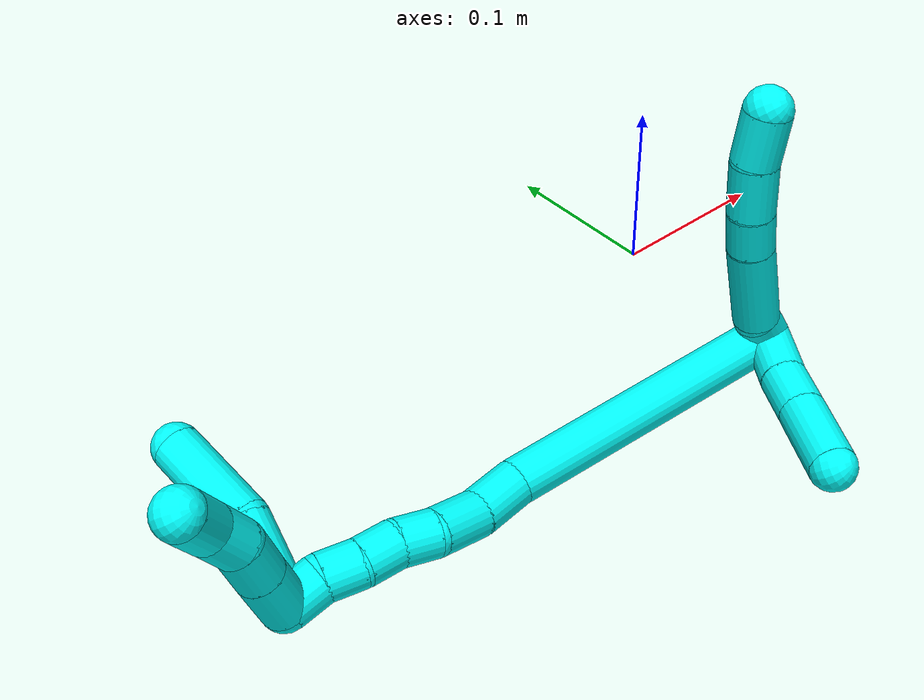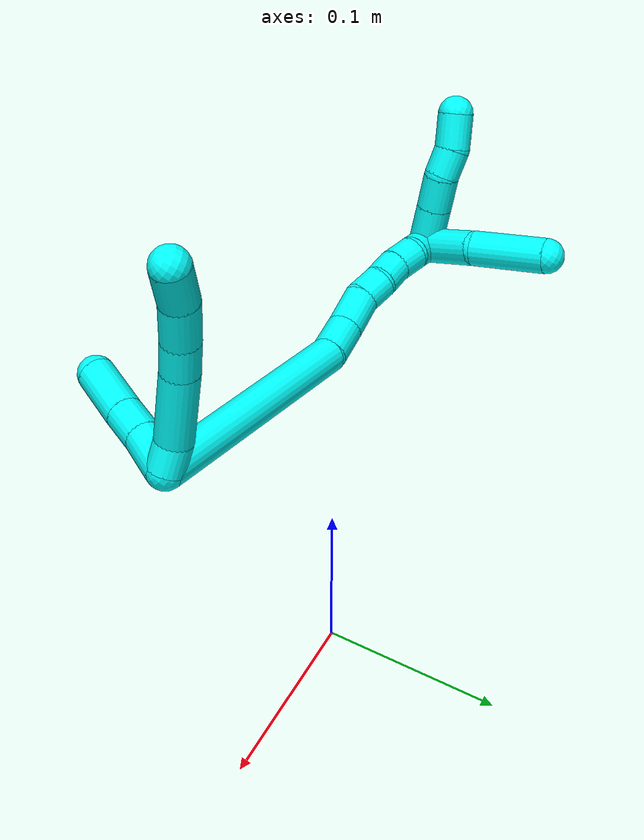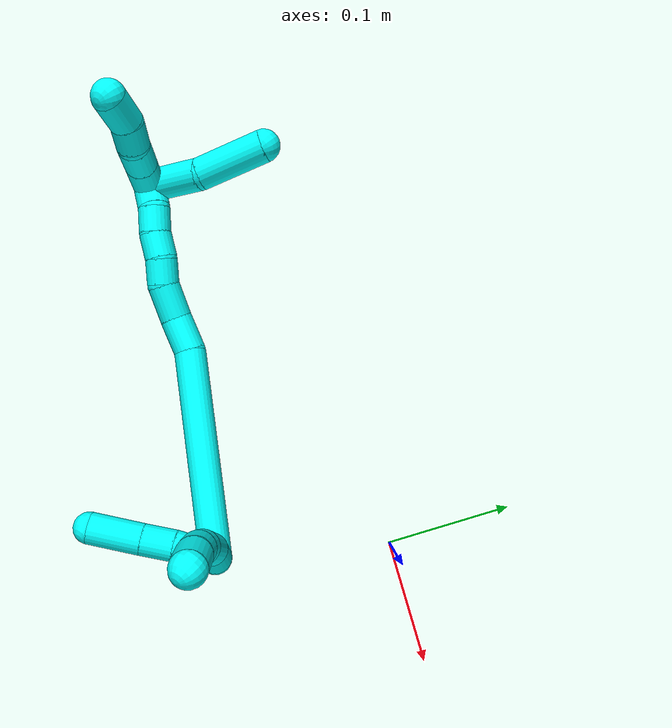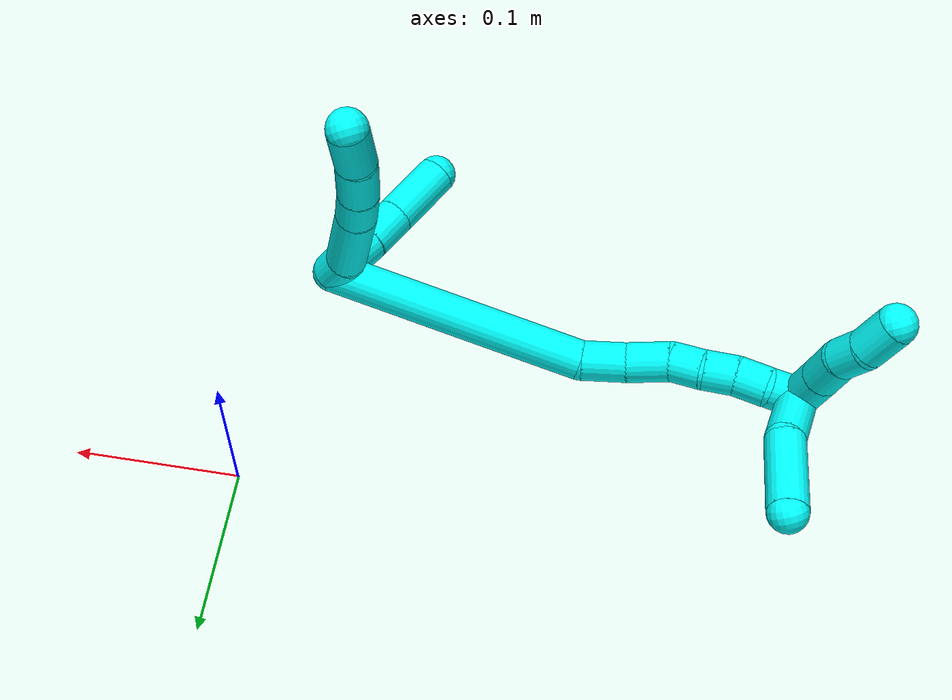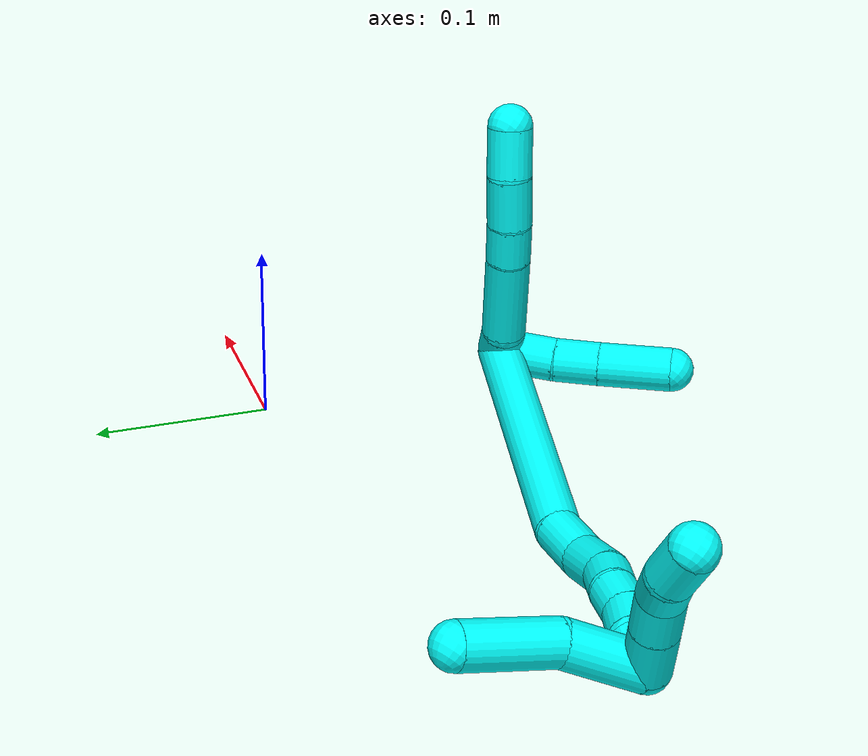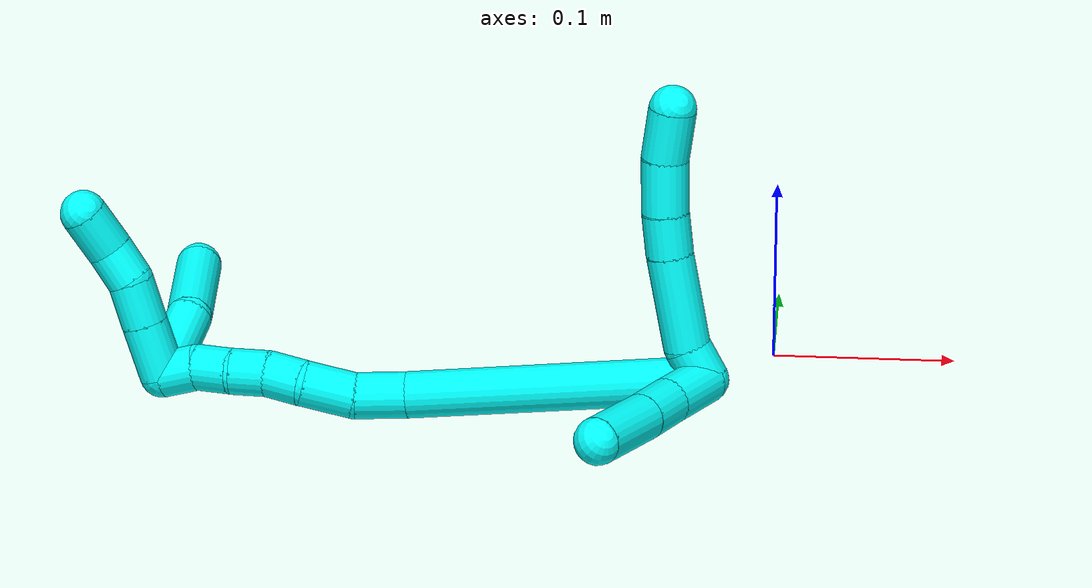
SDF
<sdf version="1.7">
 <world name="default">
  <model name="3">
   <static>0</static>
   <link name="3">
    <collision name="collision-cylinder-e_1_2_8">
     <pose>-0.008942 0.003802 -0.002961 -2.23254 -1.07652 1.76985</pose>
     <geometry><cylinder><radius>0.0125</radius><length>0.020315</length></cylinder></geometry>
     <surface>
      <friction><ode><mu>1.16</mu><mu2>1.16</mu2><slip1>0</slip1><slip2>0</slip2></ode></friction>
      <contact><ode><kp>1e+06</kp><kd>1</kd><max_vel>0</max_vel><min_depth>0.001</min_depth></ode></contact>
     </surface>
    </collision>
    <visual name="visual-cylinder-e_1_2_8">
     <pose>-0.008942 0.003802 -0.002961 -2.23254 -1.07652 1.76985</pose>
     <geometry><cylinder><radius>0.0125</radius><length>0.020315</length></cylinder></geometry>
     <material><ambient>0.003922 1 0.996078 1</ambient></material>
    </visual>
    <collision name="collision-cylinder-e_2_8_9">
     <pose>-0.039709 0.010881 -0.018463 -2.88597 -1.03489 2.69746</pose>
     <geometry><cylinder><radius>0.0125</radius><length>0.050768</length></cylinder></geometry>
     <surface>
      <friction><ode><mu>1.16</mu><mu2>1.16</mu2><slip1>0</slip1><slip2>0</slip2></ode></friction>
      <contact><ode><kp>1e+06</kp><kd>1</kd><max_vel>0</max_vel><min_depth>0.001</min_depth></ode></contact>
     </surface>
    </collision>
    <visual name="visual-cylinder-e_2_8_9">
     <pose>-0.039709 0.010881 -0.018463 -2.88597 -1.03489 2.69746</pose>
     <geometry><cylinder><radius>0.0125</radius><length>0.050768</length></cylinder></geometry>
     <material><ambient>0.003922 1 0.996078 1</ambient></material>
    </visual>
    <collision name="collision-cylinder-e_3_9_10">
     <pose>-0.071008 0.014942 -0.037107 -3.01382 -0.994728 2.90699</pose>
     <geometry><cylinder><radius>0.0125</radius><length>0.022592</length></cylinder></geometry>
     <surface>
      <friction><ode><mu>1.16</mu><mu2>1.16</mu2><slip1>0</slip1><slip2>0</slip2></ode></friction>
      <contact><ode><kp>1e+06</kp><kd>1</kd><max_vel>0</max_vel><min_depth>0.001</min_depth></ode></contact>
     </surface>
    </collision>
    <visual name="visual-cylinder-e_3_9_10">
     <pose>-0.071008 0.014942 -0.037107 -3.01382 -0.994728 2.90699</pose>
     <geometry><cylinder><radius>0.0125</radius><length>0.022592</length></cylinder></geometry>
     <material><ambient>0.003922 1 0.996078 1</ambient></material>
    </visual>
    <collision name="collision-cylinder-e_4_10_11">
     <pose>-0.092306 0.015527 -0.051565 3.11772 -0.955555 -3.09549</pose>
     <geometry><cylinder><radius>0.0125</radius><length>0.028961</length></cylinder></geometry>
     <surface>
      <friction><ode><mu>1.16</mu><mu2>1.16</mu2><slip1>0</slip1><slip2>0</slip2></ode></friction>
      <contact><ode><kp>1e+06</kp><kd>1</kd><max_vel>0</max_vel><min_depth>0.001</min_depth></ode></contact>
     </surface>
    </collision>
    <visual name="visual-cylinder-e_4_10_11">
     <pose>-0.092306 0.015527 -0.051565 3.11772 -0.955555 -3.09549</pose>
     <geometry><cylinder><radius>0.0125</radius><length>0.028961</length></cylinder></geometry>
     <material><ambient>0.003922 1 0.996078 1</ambient></material>
    </visual>
    <collision name="collision-cylinder-e_5_11_6">
     <pose>-0.113975 0.013835 -0.069304 2.98395 -0.803087 -2.77377</pose>
     <geometry><cylinder><radius>0.0125</radius><length>0.027363</length></cylinder></geometry>
     <surface>
      <friction><ode><mu>1.16</mu><mu2>1.16</mu2><slip1>0</slip1><slip2>0</slip2></ode></friction>
      <contact><ode><kp>1e+06</kp><kd>1</kd><max_vel>0</max_vel><min_depth>0.001</min_depth></ode></contact>
     </surface>
    </collision>
    <visual name="visual-cylinder-e_5_11_6">
     <pose>-0.113975 0.013835 -0.069304 2.98395 -0.803087 -2.77377</pose>
     <geometry><cylinder><radius>0.0125</radius><length>0.027363</length></cylinder></geometry>
     <material><ambient>0.003922 1 0.996078 1</ambient></material>
    </visual>
    <collision name="collision-cylinder-e_1_2_12">
     <pose>0.005097 0.014801 -0.005324 -1.91611 0.313379 -0.44211</pose>
     <geometry><cylinder><radius>0.0125</radius><length>0.033069</length></cylinder></geometry>
     <surface>
      <friction><ode><mu>1.16</mu><mu2>1.16</mu2><slip1>0</slip1><slip2>0</slip2></ode></friction>
      <contact><ode><kp>1e+06</kp><kd>1</kd><max_vel>0</max_vel><min_depth>0.001</min_depth></ode></contact>
     </surface>
    </collision>
    <visual name="visual-cylinder-e_1_2_12">
     <pose>0.005097 0.014801 -0.005324 -1.91611 0.313379 -0.44211</pose>
     <geometry><cylinder><radius>0.0125</radius><length>0.033069</length></cylinder></geometry>
     <material><ambient>0.003922 1 0.996078 1</ambient></material>
    </visual>
    <collision name="collision-cylinder-e_2_12_13">
     <pose>0.014263 0.040469 -0.015863 -2.01812 0.325492 -0.510411</pose>
     <geometry><cylinder><radius>0.0125</radius><length>0.025443</length></cylinder></geometry>
     <surface>
      <friction><ode><mu>1.16</mu><mu2>1.16</mu2><slip1>0</slip1><slip2>0</slip2></ode></friction>
      <contact><ode><kp>1e+06</kp><kd>1</kd><max_vel>0</max_vel><min_depth>0.001</min_depth></ode></contact>
     </surface>
    </collision>
    <visual name="visual-cylinder-e_2_12_13">
     <pose>0.014263 0.040469 -0.015863 -2.01812 0.325492 -0.510411</pose>
     <geometry><cylinder><radius>0.0125</radius><length>0.025443</length></cylinder></geometry>
     <material><ambient>0.003922 1 0.996078 1</ambient></material>
    </visual>
    <collision name="collision-cylinder-e_3_13_5">
     <pose>0.024136 0.06929 -0.029697 -2.01846 0.283633 -0.44632</pose>
     <geometry><cylinder><radius>0.0125</radius><length>0.041487</length></cylinder></geometry>
     <surface>
      <friction><ode><mu>1.16</mu><mu2>1.16</mu2><slip1>0</slip1><slip2>0</slip2></ode></friction>
      <contact><ode><kp>1e+06</kp><kd>1</kd><max_vel>0</max_vel><min_depth>0.001</min_depth></ode></contact>
     </surface>
    </collision>
    <visual name="visual-cylinder-e_3_13_5">
     <pose>0.024136 0.06929 -0.029697 -2.01846 0.283633 -0.44632</pose>
     <geometry><cylinder><radius>0.0125</radius><length>0.041487</length></cylinder></geometry>
     <material><ambient>0.003922 1 0.996078 1</ambient></material>
    </visual>
    <collision name="collision-cylinder-e_1_2_14">
     <pose>-0.022646 0.062637 0.047183 -0.925198 -0.28113 0.140894</pose>
     <geometry><cylinder><radius>0.0125</radius><length>0.163248</length></cylinder></geometry>
     <surface>
      <friction><ode><mu>1.16</mu><mu2>1.16</mu2><slip1>0</slip1><slip2>0</slip2></ode></friction>
      <contact><ode><kp>1e+06</kp><kd>1</kd><max_vel>0</max_vel><min_depth>0.001</min_depth></ode></contact>
     </surface>
    </collision>
    <visual name="visual-cylinder-e_1_2_14">
     <pose>-0.022646 0.062637 0.047183 -0.925198 -0.28113 0.140894</pose>
     <geometry><cylinder><radius>0.0125</radius><length>0.163248</length></cylinder></geometry>
     <material><ambient>0.003922 1 0.996078 1</ambient></material>
    </visual>
    <collision name="collision-cylinder-e_2_14_15">
     <pose>-0.04891 0.138256 0.098988 -1.22884 -0.256755 0.181646</pose>
     <geometry><cylinder><radius>0.0125</radius><length>0.028495</length></cylinder></geometry>
     <surface>
      <friction><ode><mu>1.16</mu><mu2>1.16</mu2><slip1>0</slip1><slip2>0</slip2></ode></friction>
      <contact><ode><kp>1e+06</kp><kd>1</kd><max_vel>0</max_vel><min_depth>0.001</min_depth></ode></contact>
     </surface>
    </collision>
    <visual name="visual-cylinder-e_2_14_15">
     <pose>-0.04891 0.138256 0.098988 -1.22884 -0.256755 0.181646</pose>
     <geometry><cylinder><radius>0.0125</radius><length>0.028495</length></cylinder></geometry>
     <material><ambient>0.003922 1 0.996078 1</ambient></material>
    </visual>
    <collision name="collision-cylinder-e_3_15_16">
     <pose>-0.059269 0.163233 0.106588 -1.3273 -0.499358 0.393642</pose>
     <geometry><cylinder><radius>0.0125</radius><length>0.028155</length></cylinder></geometry>
     <surface>
      <friction><ode><mu>1.16</mu><mu2>1.16</mu2><slip1>0</slip1><slip2>0</slip2></ode></friction>
      <contact><ode><kp>1e+06</kp><kd>1</kd><max_vel>0</max_vel><min_depth>0.001</min_depth></ode></contact>
     </surface>
    </collision>
    <visual name="visual-cylinder-e_3_15_16">
     <pose>-0.059269 0.163233 0.106588 -1.3273 -0.499358 0.393642</pose>
     <geometry><cylinder><radius>0.0125</radius><length>0.028155</length></cylinder></geometry>
     <material><ambient>0.003922 1 0.996078 1</ambient></material>
    </visual>
    <collision name="collision-cylinder-e_4_16_17">
     <pose>-0.071501 0.182304 0.114079 -1.00331 -0.579355 0.32408</pose>
     <geometry><cylinder><radius>0.0125</radius><length>0.020058</length></cylinder></geometry>
     <surface>
      <friction><ode><mu>1.16</mu><mu2>1.16</mu2><slip1>0</slip1><slip2>0</slip2></ode></friction>
      <contact><ode><kp>1e+06</kp><kd>1</kd><max_vel>0</max_vel><min_depth>0.001</min_depth></ode></contact>
     </surface>
    </collision>
    <visual name="visual-cylinder-e_4_16_17">
     <pose>-0.071501 0.182304 0.114079 -1.00331 -0.579355 0.32408</pose>
     <geometry><cylinder><radius>0.0125</radius><length>0.020058</length></cylinder></geometry>
     <material><ambient>0.003922 1 0.996078 1</ambient></material>
    </visual>
    <collision name="collision-cylinder-e_5_17_18">
     <pose>-0.080594 0.197675 0.122861 -1.09524 -0.368455 0.226303</pose>
     <geometry><cylinder><radius>0.0125</radius><length>0.020001</length></cylinder></geometry>
     <surface>
      <friction><ode><mu>1.16</mu><mu2>1.16</mu2><slip1>0</slip1><slip2>0</slip2></ode></friction>
      <contact><ode><kp>1e+06</kp><kd>1</kd><max_vel>0</max_vel><min_depth>0.001</min_depth></ode></contact>
     </surface>
    </collision>
    <visual name="visual-cylinder-e_5_17_18">
     <pose>-0.080594 0.197675 0.122861 -1.09524 -0.368455 0.226303</pose>
     <geometry><cylinder><radius>0.0125</radius><length>0.020001</length></cylinder></geometry>
     <material><ambient>0.003922 1 0.996078 1</ambient></material>
    </visual>
    <collision name="collision-cylinder-e_6_18_19">
     <pose>-0.088536 0.213077 0.132697 -0.906564 -0.448147 0.22112</pose>
     <geometry><cylinder><radius>0.0125</radius><length>0.020032</length></cylinder></geometry>
     <surface>
      <friction><ode><mu>1.16</mu><mu2>1.16</mu2><slip1>0</slip1><slip2>0</slip2></ode></friction>
      <contact><ode><kp>1e+06</kp><kd>1</kd><max_vel>0</max_vel><min_depth>0.001</min_depth></ode></contact>
     </surface>
    </collision>
    <visual name="visual-cylinder-e_6_18_19">
     <pose>-0.088536 0.213077 0.132697 -0.906564 -0.448147 0.22112</pose>
     <geometry><cylinder><radius>0.0125</radius><length>0.020032</length></cylinder></geometry>
     <material><ambient>0.003922 1 0.996078 1</ambient></material>
    </visual>
    <collision name="collision-cylinder-e_7_19_1">
     <pose>-0.094181 0.228245 0.144044 -0.948534 -0.130906 0.067271</pose>
     <geometry><cylinder><radius>0.0125</radius><length>0.020011</length></cylinder></geometry>
     <surface>
      <friction><ode><mu>1.16</mu><mu2>1.16</mu2><slip1>0</slip1><slip2>0</slip2></ode></friction>
      <contact><ode><kp>1e+06</kp><kd>1</kd><max_vel>0</max_vel><min_depth>0.001</min_depth></ode></contact>
     </surface>
    </collision>
    <visual name="visual-cylinder-e_7_19_1">
     <pose>-0.094181 0.228245 0.144044 -0.948534 -0.130906 0.067271</pose>
     <geometry><cylinder><radius>0.0125</radius><length>0.020011</length></cylinder></geometry>
     <material><ambient>0.003922 1 0.996078 1</ambient></material>
    </visual>
    <collision name="collision-cylinder-e_1_1_20">
     <pose>-0.108746 0.239702 0.143252 -2.66472 -1.06174 2.35654</pose>
     <geometry><cylinder><radius>0.0125</radius><length>0.030367</length></cylinder></geometry>
     <surface>
      <friction><ode><mu>1.16</mu><mu2>1.16</mu2><slip1>0</slip1><slip2>0</slip2></ode></friction>
      <contact><ode><kp>1e+06</kp><kd>1</kd><max_vel>0</max_vel><min_depth>0.001</min_depth></ode></contact>
     </surface>
    </collision>
    <visual name="visual-cylinder-e_1_1_20">
     <pose>-0.108746 0.239702 0.143252 -2.66472 -1.06174 2.35654</pose>
     <geometry><cylinder><radius>0.0125</radius><length>0.030367</length></cylinder></geometry>
     <material><ambient>0.003922 1 0.996078 1</ambient></material>
    </visual>
    <collision name="collision-cylinder-e_2_20_21">
     <pose>-0.13258 0.245674 0.131297 -2.69511 -1.05727 2.40016</pose>
     <geometry><cylinder><radius>0.0125</radius><length>0.024286</length></cylinder></geometry>
     <surface>
      <friction><ode><mu>1.16</mu><mu2>1.16</mu2><slip1>0</slip1><slip2>0</slip2></ode></friction>
      <contact><ode><kp>1e+06</kp><kd>1</kd><max_vel>0</max_vel><min_depth>0.001</min_depth></ode></contact>
     </surface>
    </collision>
    <visual name="visual-cylinder-e_2_20_21">
     <pose>-0.13258 0.245674 0.131297 -2.69511 -1.05727 2.40016</pose>
     <geometry><cylinder><radius>0.0125</radius><length>0.024286</length></cylinder></geometry>
     <material><ambient>0.003922 1 0.996078 1</ambient></material>
    </visual>
    <collision name="collision-cylinder-e_3_21_22">
     <pose>-0.152159 0.25246 0.123654 -2.06401 -1.08271 1.57661</pose>
     <geometry><cylinder><radius>0.0125</radius><length>0.020385</length></cylinder></geometry>
     <surface>
      <friction><ode><mu>1.16</mu><mu2>1.16</mu2><slip1>0</slip1><slip2>0</slip2></ode></friction>
      <contact><ode><kp>1e+06</kp><kd>1</kd><max_vel>0</max_vel><min_depth>0.001</min_depth></ode></contact>
     </surface>
    </collision>
    <visual name="visual-cylinder-e_3_21_22">
     <pose>-0.152159 0.25246 0.123654 -2.06401 -1.08271 1.57661</pose>
     <geometry><cylinder><radius>0.0125</radius><length>0.020385</length></cylinder></geometry>
     <material><ambient>0.003922 1 0.996078 1</ambient></material>
    </visual>
    <collision name="collision-cylinder-e_4_22_4">
     <pose>-0.170385 0.262964 0.115814 -2.29588 -0.831538 1.55174</pose>
     <geometry><cylinder><radius>0.0125</radius><length>0.024963</length></cylinder></geometry>
     <surface>
      <friction><ode><mu>1.16</mu><mu2>1.16</mu2><slip1>0</slip1><slip2>0</slip2></ode></friction>
      <contact><ode><kp>1e+06</kp><kd>1</kd><max_vel>0</max_vel><min_depth>0.001</min_depth></ode></contact>
     </surface>
    </collision>
    <visual name="visual-cylinder-e_4_22_4">
     <pose>-0.170385 0.262964 0.115814 -2.29588 -0.831538 1.55174</pose>
     <geometry><cylinder><radius>0.0125</radius><length>0.024963</length></cylinder></geometry>
     <material><ambient>0.003922 1 0.996078 1</ambient></material>
    </visual>
    <collision name="collision-cylinder-e_1_1_23">
     <pose>-0.112267 0.22223 0.156912 1.10439 -0.816744 -0.521077</pose>
     <geometry><cylinder><radius>0.0125</radius><length>0.046039</length></cylinder></geometry>
     <surface>
      <friction><ode><mu>1.16</mu><mu2>1.16</mu2><slip1>0</slip1><slip2>0</slip2></ode></friction>
      <contact><ode><kp>1e+06</kp><kd>1</kd><max_vel>0</max_vel><min_depth>0.001</min_depth></ode></contact>
     </surface>
    </collision>
    <visual name="visual-cylinder-e_1_1_23">
     <pose>-0.112267 0.22223 0.156912 1.10439 -0.816744 -0.521077</pose>
     <geometry><cylinder><radius>0.0125</radius><length>0.046039</length></cylinder></geometry>
     <material><ambient>0.003922 1 0.996078 1</ambient></material>
    </visual>
    <collision name="collision-cylinder-e_2_23_3">
     <pose>-0.147658 0.196069 0.179345 0.667029 -0.761253 -0.275506</pose>
     <geometry><cylinder><radius>0.0125</radius><length>0.053961</length></cylinder></geometry>
     <surface>
      <friction><ode><mu>1.16</mu><mu2>1.16</mu2><slip1>0</slip1><slip2>0</slip2></ode></friction>
      <contact><ode><kp>1e+06</kp><kd>1</kd><max_vel>0</max_vel><min_depth>0.001</min_depth></ode></contact>
     </surface>
    </collision>
    <visual name="visual-cylinder-e_2_23_3">
     <pose>-0.147658 0.196069 0.179345 0.667029 -0.761253 -0.275506</pose>
     <geometry><cylinder><radius>0.0125</radius><length>0.053961</length></cylinder></geometry>
     <material><ambient>0.003922 1 0.996078 1</ambient></material>
    </visual>
    <collision name="collision-sphere-3">
     <pose>-0.16627 0.183985 0.194692 0 -0 0</pose>
     <geometry><sphere><radius>0.0125</radius></sphere></geometry>
     <surface>
      <friction><ode><mu>1.16</mu><mu2>1.16</mu2><slip1>0</slip1><slip2>0</slip2></ode></friction>
      <contact><ode><kp>1e+06</kp><kd>1</kd><max_vel>0</max_vel><min_depth>0.001</min_depth></ode></contact>
     </surface>
    </collision>
    <visual name="visual-sphere-3">
     <pose>-0.16627 0.183985 0.194692 0 -0 0</pose>
     <geometry><sphere><radius>0.0125</radius></sphere></geometry>
     <material><ambient>0.003922 1 0.996078 1</ambient></material>
    </visual>
    <collision name="collision-sphere-23">
     <pose>-0.129046 0.208154 0.163999 0 -0 0</pose>
     <geometry><sphere><radius>0.0125</radius></sphere></geometry>
     <surface>
      <friction><ode><mu>1.16</mu><mu2>1.16</mu2><slip1>0</slip1><slip2>0</slip2></ode></friction>
      <contact><ode><kp>1e+06</kp><kd>1</kd><max_vel>0</max_vel><min_depth>0.001</min_depth></ode></contact>
     </surface>
    </collision>
    <visual name="visual-sphere-23">
     <pose>-0.129046 0.208154 0.163999 0 -0 0</pose>
     <geometry><sphere><radius>0.0125</radius></sphere></geometry>
     <material><ambient>0.003922 1 0.996078 1</ambient></material>
    </visual>
    <collision name="collision-sphere-4">
     <pose>-0.179608 0.269257 0.110237 0 -0 0</pose>
     <geometry><sphere><radius>0.0125</radius></sphere></geometry>
     <surface>
      <friction><ode><mu>1.16</mu><mu2>1.16</mu2><slip1>0</slip1><slip2>0</slip2></ode></friction>
      <contact><ode><kp>1e+06</kp><kd>1</kd><max_vel>0</max_vel><min_depth>0.001</min_depth></ode></contact>
     </surface>
    </collision>
    <visual name="visual-sphere-4">
     <pose>-0.179608 0.269257 0.110237 0 -0 0</pose>
     <geometry><sphere><radius>0.0125</radius></sphere></geometry>
     <material><ambient>0.003922 1 0.996078 1</ambient></material>
    </visual>
    <collision name="collision-sphere-22">
     <pose>-0.161161 0.25667 0.121391 0 -0 0</pose>
     <geometry><sphere><radius>0.0125</radius></sphere></geometry>
     <surface>
      <friction><ode><mu>1.16</mu><mu2>1.16</mu2><slip1>0</slip1><slip2>0</slip2></ode></friction>
      <contact><ode><kp>1e+06</kp><kd>1</kd><max_vel>0</max_vel><min_depth>0.001</min_depth></ode></contact>
     </surface>
    </collision>
    <visual name="visual-sphere-22">
     <pose>-0.161161 0.25667 0.121391 0 -0 0</pose>
     <geometry><sphere><radius>0.0125</radius></sphere></geometry>
     <material><ambient>0.003922 1 0.996078 1</ambient></material>
    </visual>
    <collision name="collision-sphere-21">
     <pose>-0.143157 0.24825 0.125917 0 -0 0</pose>
     <geometry><sphere><radius>0.0125</radius></sphere></geometry>
     <surface>
      <friction><ode><mu>1.16</mu><mu2>1.16</mu2><slip1>0</slip1><slip2>0</slip2></ode></friction>
      <contact><ode><kp>1e+06</kp><kd>1</kd><max_vel>0</max_vel><min_depth>0.001</min_depth></ode></contact>
     </surface>
    </collision>
    <visual name="visual-sphere-21">
     <pose>-0.143157 0.24825 0.125917 0 -0 0</pose>
     <geometry><sphere><radius>0.0125</radius></sphere></geometry>
     <material><ambient>0.003922 1 0.996078 1</ambient></material>
    </visual>
    <collision name="collision-sphere-20">
     <pose>-0.122004 0.243098 0.136678 0 -0 0</pose>
     <geometry><sphere><radius>0.0125</radius></sphere></geometry>
     <surface>
      <friction><ode><mu>1.16</mu><mu2>1.16</mu2><slip1>0</slip1><slip2>0</slip2></ode></friction>
      <contact><ode><kp>1e+06</kp><kd>1</kd><max_vel>0</max_vel><min_depth>0.001</min_depth></ode></contact>
     </surface>
    </collision>
    <visual name="visual-sphere-20">
     <pose>-0.122004 0.243098 0.136678 0 -0 0</pose>
     <geometry><sphere><radius>0.0125</radius></sphere></geometry>
     <material><ambient>0.003922 1 0.996078 1</ambient></material>
    </visual>
    <collision name="collision-sphere-6">
     <pose>-0.123819 0.012344 -0.078688 0 -0 0</pose>
     <geometry><sphere><radius>0.0125</radius></sphere></geometry>
     <surface>
      <friction><ode><mu>1.16</mu><mu2>1.16</mu2><slip1>0</slip1><slip2>0</slip2></ode></friction>
      <contact><ode><kp>1e+06</kp><kd>1</kd><max_vel>0</max_vel><min_depth>0.001</min_depth></ode></contact>
     </surface>
    </collision>
    <visual name="visual-sphere-6">
     <pose>-0.123819 0.012344 -0.078688 0 -0 0</pose>
     <geometry><sphere><radius>0.0125</radius></sphere></geometry>
     <material><ambient>0.003922 1 0.996078 1</ambient></material>
    </visual>
    <collision name="collision-sphere-11">
     <pose>-0.104131 0.015327 -0.05992 0 -0 0</pose>
     <geometry><sphere><radius>0.0125</radius></sphere></geometry>
     <surface>
      <friction><ode><mu>1.16</mu><mu2>1.16</mu2><slip1>0</slip1><slip2>0</slip2></ode></friction>
      <contact><ode><kp>1e+06</kp><kd>1</kd><max_vel>0</max_vel><min_depth>0.001</min_depth></ode></contact>
     </surface>
    </collision>
    <visual name="visual-sphere-11">
     <pose>-0.104131 0.015327 -0.05992 0 -0 0</pose>
     <geometry><sphere><radius>0.0125</radius></sphere></geometry>
     <material><ambient>0.003922 1 0.996078 1</ambient></material>
    </visual>
    <collision name="collision-sphere-10">
     <pose>-0.080481 0.015726 -0.04321 0 -0 0</pose>
     <geometry><sphere><radius>0.0125</radius></sphere></geometry>
     <surface>
      <friction><ode><mu>1.16</mu><mu2>1.16</mu2><slip1>0</slip1><slip2>0</slip2></ode></friction>
      <contact><ode><kp>1e+06</kp><kd>1</kd><max_vel>0</max_vel><min_depth>0.001</min_depth></ode></contact>
     </surface>
    </collision>
    <visual name="visual-sphere-10">
     <pose>-0.080481 0.015726 -0.04321 0 -0 0</pose>
     <geometry><sphere><radius>0.0125</radius></sphere></geometry>
     <material><ambient>0.003922 1 0.996078 1</ambient></material>
    </visual>
    <collision name="collision-sphere-9">
     <pose>-0.061535 0.014158 -0.031003 0 -0 0</pose>
     <geometry><sphere><radius>0.0125</radius></sphere></geometry>
     <surface>
      <friction><ode><mu>1.16</mu><mu2>1.16</mu2><slip1>0</slip1><slip2>0</slip2></ode></friction>
      <contact><ode><kp>1e+06</kp><kd>1</kd><max_vel>0</max_vel><min_depth>0.001</min_depth></ode></contact>
     </surface>
    </collision>
    <visual name="visual-sphere-9">
     <pose>-0.061535 0.014158 -0.031003 0 -0 0</pose>
     <geometry><sphere><radius>0.0125</radius></sphere></geometry>
     <material><ambient>0.003922 1 0.996078 1</ambient></material>
    </visual>
    <collision name="collision-sphere-2">
     <geometry><sphere><radius>0.0125</radius></sphere></geometry>
     <surface>
      <friction><ode><mu>1.16</mu><mu2>1.16</mu2><slip1>0</slip1><slip2>0</slip2></ode></friction>
      <contact><ode><kp>1e+06</kp><kd>1</kd><max_vel>0</max_vel><min_depth>0.001</min_depth></ode></contact>
     </surface>
    </collision>
    <visual name="visual-sphere-2">
     <geometry><sphere><radius>0.0125</radius></sphere></geometry>
     <material><ambient>0.003922 1 0.996078 1</ambient></material>
    </visual>
    <collision name="collision-sphere-19">
     <pose>-0.092875 0.220184 0.138262 0 -0 0</pose>
     <geometry><sphere><radius>0.0125</radius></sphere></geometry>
     <surface>
      <friction><ode><mu>1.16</mu><mu2>1.16</mu2><slip1>0</slip1><slip2>0</slip2></ode></friction>
      <contact><ode><kp>1e+06</kp><kd>1</kd><max_vel>0</max_vel><min_depth>0.001</min_depth></ode></contact>
     </surface>
    </collision>
    <visual name="visual-sphere-19">
     <pose>-0.092875 0.220184 0.138262 0 -0 0</pose>
     <geometry><sphere><radius>0.0125</radius></sphere></geometry>
     <material><ambient>0.003922 1 0.996078 1</ambient></material>
    </visual>
    <collision name="collision-sphere-8">
     <pose>-0.017884 0.007603 -0.005922 0 -0 0</pose>
     <geometry><sphere><radius>0.0125</radius></sphere></geometry>
     <surface>
      <friction><ode><mu>1.16</mu><mu2>1.16</mu2><slip1>0</slip1><slip2>0</slip2></ode></friction>
      <contact><ode><kp>1e+06</kp><kd>1</kd><max_vel>0</max_vel><min_depth>0.001</min_depth></ode></contact>
     </surface>
    </collision>
    <visual name="visual-sphere-8">
     <pose>-0.017884 0.007603 -0.005922 0 -0 0</pose>
     <geometry><sphere><radius>0.0125</radius></sphere></geometry>
     <material><ambient>0.003922 1 0.996078 1</ambient></material>
    </visual>
    <collision name="collision-sphere-12">
     <pose>0.010194 0.029602 -0.010649 0 -0 0</pose>
     <geometry><sphere><radius>0.0125</radius></sphere></geometry>
     <surface>
      <friction><ode><mu>1.16</mu><mu2>1.16</mu2><slip1>0</slip1><slip2>0</slip2></ode></friction>
      <contact><ode><kp>1e+06</kp><kd>1</kd><max_vel>0</max_vel><min_depth>0.001</min_depth></ode></contact>
     </surface>
    </collision>
    <visual name="visual-sphere-12">
     <pose>0.010194 0.029602 -0.010649 0 -0 0</pose>
     <geometry><sphere><radius>0.0125</radius></sphere></geometry>
     <material><ambient>0.003922 1 0.996078 1</ambient></material>
    </visual>
    <collision name="collision-sphere-13">
     <pose>0.018331 0.051337 -0.021076 0 -0 0</pose>
     <geometry><sphere><radius>0.0125</radius></sphere></geometry>
     <surface>
      <friction><ode><mu>1.16</mu><mu2>1.16</mu2><slip1>0</slip1><slip2>0</slip2></ode></friction>
      <contact><ode><kp>1e+06</kp><kd>1</kd><max_vel>0</max_vel><min_depth>0.001</min_depth></ode></contact>
     </surface>
    </collision>
    <visual name="visual-sphere-13">
     <pose>0.018331 0.051337 -0.021076 0 -0 0</pose>
     <geometry><sphere><radius>0.0125</radius></sphere></geometry>
     <material><ambient>0.003922 1 0.996078 1</ambient></material>
    </visual>
    <collision name="collision-sphere-5">
     <pose>0.029941 0.087242 -0.038317 0 -0 0</pose>
     <geometry><sphere><radius>0.0125</radius></sphere></geometry>
     <surface>
      <friction><ode><mu>1.16</mu><mu2>1.16</mu2><slip1>0</slip1><slip2>0</slip2></ode></friction>
      <contact><ode><kp>1e+06</kp><kd>1</kd><max_vel>0</max_vel><min_depth>0.001</min_depth></ode></contact>
     </surface>
    </collision>
    <visual name="visual-sphere-5">
     <pose>0.029941 0.087242 -0.038317 0 -0 0</pose>
     <geometry><sphere><radius>0.0125</radius></sphere></geometry>
     <material><ambient>0.003922 1 0.996078 1</ambient></material>
    </visual>
    <collision name="collision-sphere-14">
     <pose>-0.045292 0.125274 0.094367 0 -0 0</pose>
     <geometry><sphere><radius>0.0125</radius></sphere></geometry>
     <surface>
      <friction><ode><mu>1.16</mu><mu2>1.16</mu2><slip1>0</slip1><slip2>0</slip2></ode></friction>
      <contact><ode><kp>1e+06</kp><kd>1</kd><max_vel>0</max_vel><min_depth>0.001</min_depth></ode></contact>
     </surface>
    </collision>
    <visual name="visual-sphere-14">
     <pose>-0.045292 0.125274 0.094367 0 -0 0</pose>
     <geometry><sphere><radius>0.0125</radius></sphere></geometry>
     <material><ambient>0.003922 1 0.996078 1</ambient></material>
    </visual>
    <collision name="collision-sphere-15">
     <pose>-0.052528 0.151239 0.103609 0 -0 0</pose>
     <geometry><sphere><radius>0.0125</radius></sphere></geometry>
     <surface>
      <friction><ode><mu>1.16</mu><mu2>1.16</mu2><slip1>0</slip1><slip2>0</slip2></ode></friction>
      <contact><ode><kp>1e+06</kp><kd>1</kd><max_vel>0</max_vel><min_depth>0.001</min_depth></ode></contact>
     </surface>
    </collision>
    <visual name="visual-sphere-15">
     <pose>-0.052528 0.151239 0.103609 0 -0 0</pose>
     <geometry><sphere><radius>0.0125</radius></sphere></geometry>
     <material><ambient>0.003922 1 0.996078 1</ambient></material>
    </visual>
    <collision name="collision-sphere-16">
     <pose>-0.06601 0.175227 0.109568 0 -0 0</pose>
     <geometry><sphere><radius>0.0125</radius></sphere></geometry>
     <surface>
      <friction><ode><mu>1.16</mu><mu2>1.16</mu2><slip1>0</slip1><slip2>0</slip2></ode></friction>
      <contact><ode><kp>1e+06</kp><kd>1</kd><max_vel>0</max_vel><min_depth>0.001</min_depth></ode></contact>
     </surface>
    </collision>
    <visual name="visual-sphere-16">
     <pose>-0.06601 0.175227 0.109568 0 -0 0</pose>
     <geometry><sphere><radius>0.0125</radius></sphere></geometry>
     <material><ambient>0.003922 1 0.996078 1</ambient></material>
    </visual>
    <collision name="collision-sphere-17">
     <pose>-0.076992 0.189381 0.11859 0 -0 0</pose>
     <geometry><sphere><radius>0.0125</radius></sphere></geometry>
     <surface>
      <friction><ode><mu>1.16</mu><mu2>1.16</mu2><slip1>0</slip1><slip2>0</slip2></ode></friction>
      <contact><ode><kp>1e+06</kp><kd>1</kd><max_vel>0</max_vel><min_depth>0.001</min_depth></ode></contact>
     </surface>
    </collision>
    <visual name="visual-sphere-17">
     <pose>-0.076992 0.189381 0.11859 0 -0 0</pose>
     <geometry><sphere><radius>0.0125</radius></sphere></geometry>
     <material><ambient>0.003922 1 0.996078 1</ambient></material>
    </visual>
    <collision name="collision-sphere-18">
     <pose>-0.084196 0.205969 0.127132 0 -0 0</pose>
     <geometry><sphere><radius>0.0125</radius></sphere></geometry>
     <surface>
      <friction><ode><mu>1.16</mu><mu2>1.16</mu2><slip1>0</slip1><slip2>0</slip2></ode></friction>
      <contact><ode><kp>1e+06</kp><kd>1</kd><max_vel>0</max_vel><min_depth>0.001</min_depth></ode></contact>
     </surface>
    </collision>
    <visual name="visual-sphere-18">
     <pose>-0.084196 0.205969 0.127132 0 -0 0</pose>
     <geometry><sphere><radius>0.0125</radius></sphere></geometry>
     <material><ambient>0.003922 1 0.996078 1</ambient></material>
    </visual>
    <collision name="collision-sphere-1">
     <pose>-0.095488 0.236305 0.149826 0 -0 0</pose>
     <geometry><sphere><radius>0.0125</radius></sphere></geometry>
     <surface>
      <friction><ode><mu>1.16</mu><mu2>1.16</mu2><slip1>0</slip1><slip2>0</slip2></ode></friction>
      <contact><ode><kp>1e+06</kp><kd>1</kd><max_vel>0</max_vel><min_depth>0.001</min_depth></ode></contact>
     </surface>
    </collision>
    <visual name="visual-sphere-1">
     <pose>-0.095488 0.236305 0.149826 0 -0 0</pose>
     <geometry><sphere><radius>0.0125</radius></sphere></geometry>
     <material><ambient>0.003922 1 0.996078 1</ambient></material>
    </visual>
    <inertial>
     <pose>-0.064718 0.116218 0.062167 0 -0 0</pose>
     <mass>0.75</mass>
     <inertia>
      <ixx>0.000398</ixx>
      <ixy>0</ixy>
      <ixz>0</ixz>
      <iyy>0.000355</iyy>
      <iyz>0</iyz>
      <izz>-0.000148</izz>
     </inertia>
    </inertial>
   </link>
   <pose>-0.032477 -0.132048 0.03568 -3.12162 0.91174 -1.017</pose>
  </model>
 </world>
</sdf>
